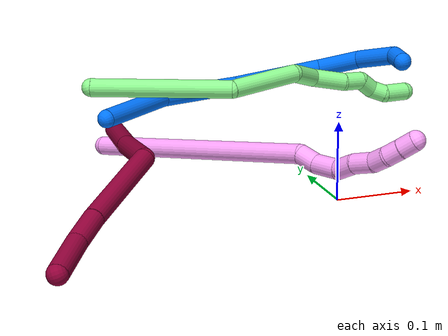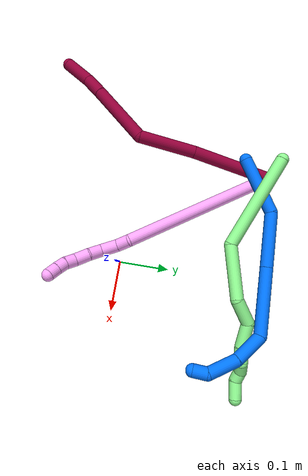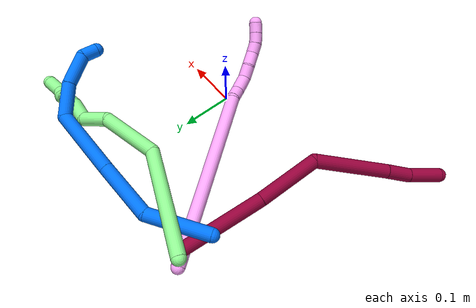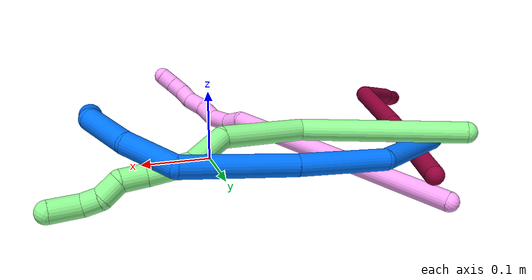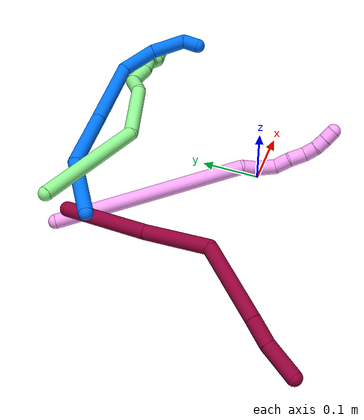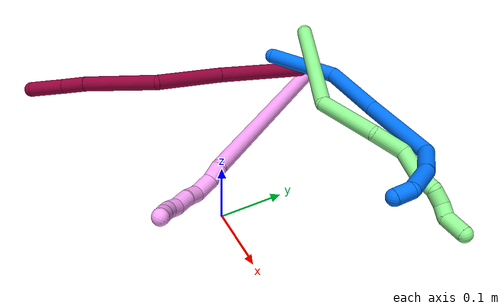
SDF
<sdf version="1.7">
 <world name="default">
  <model name="4">
   <static>0</static>
   <link name="4">
    <collision name="collision-cylinder-e_1_1_4">
     <pose>0.01134 -0.136554 -0.086725 2.13662 0.069984 0.127232</pose>
     <geometry><cylinder><radius>0.0125</radius><length>0.324325</length></cylinder></geometry>
     <surface>
      <friction><ode><mu>1.16</mu><mu2>1.16</mu2><slip1>0</slip1><slip2>0</slip2></ode></friction>
      <contact><ode><kp>1e+06</kp><kd>1</kd><max_vel>0</max_vel><min_depth>0.001</min_depth></ode></contact>
     </surface>
    </collision>
    <visual name="visual-cylinder-e_1_1_4">
     <pose>0.01134 -0.136554 -0.086725 2.13662 0.069984 0.127232</pose>
     <geometry><cylinder><radius>0.0125</radius><length>0.324325</length></cylinder></geometry>
     <material><ambient>1 0.65098 0.996078 1</ambient></material>
    </visual>
    <collision name="collision-cylinder-e_2_4_5">
     <pose>0.023036 -0.279843 -0.184402 2.59026 0.027775 0.09812</pose>
     <geometry><cylinder><radius>0.0125</radius><length>0.025726</length></cylinder></geometry>
     <surface>
      <friction><ode><mu>1.16</mu><mu2>1.16</mu2><slip1>0</slip1><slip2>0</slip2></ode></friction>
      <contact><ode><kp>1e+06</kp><kd>1</kd><max_vel>0</max_vel><min_depth>0.001</min_depth></ode></contact>
     </surface>
    </collision>
    <visual name="visual-cylinder-e_2_4_5">
     <pose>0.023036 -0.279843 -0.184402 2.59026 0.027775 0.09812</pose>
     <geometry><cylinder><radius>0.0125</radius><length>0.025726</length></cylinder></geometry>
     <material><ambient>1 0.65098 0.996078 1</ambient></material>
    </visual>
    <collision name="collision-cylinder-e_3_5_6">
     <pose>0.022459 -0.299547 -0.206385 2.27557 -0.054845 -0.118535</pose>
     <geometry><cylinder><radius>0.0125</radius><length>0.034101</length></cylinder></geometry>
     <surface>
      <friction><ode><mu>1.16</mu><mu2>1.16</mu2><slip1>0</slip1><slip2>0</slip2></ode></friction>
      <contact><ode><kp>1e+06</kp><kd>1</kd><max_vel>0</max_vel><min_depth>0.001</min_depth></ode></contact>
     </surface>
    </collision>
    <visual name="visual-cylinder-e_3_5_6">
     <pose>0.022459 -0.299547 -0.206385 2.27557 -0.054845 -0.118535</pose>
     <geometry><cylinder><radius>0.0125</radius><length>0.034101</length></cylinder></geometry>
     <material><ambient>1 0.65098 0.996078 1</ambient></material>
    </visual>
    <collision name="collision-cylinder-e_4_6_7">
     <pose>0.021216 -0.325307 -0.220492 1.80688 -0.023432 -0.029736</pose>
     <geometry><cylinder><radius>0.0125</radius><length>0.026319</length></cylinder></geometry>
     <surface>
      <friction><ode><mu>1.16</mu><mu2>1.16</mu2><slip1>0</slip1><slip2>0</slip2></ode></friction>
      <contact><ode><kp>1e+06</kp><kd>1</kd><max_vel>0</max_vel><min_depth>0.001</min_depth></ode></contact>
     </surface>
    </collision>
    <visual name="visual-cylinder-e_4_6_7">
     <pose>0.021216 -0.325307 -0.220492 1.80688 -0.023432 -0.029736</pose>
     <geometry><cylinder><radius>0.0125</radius><length>0.026319</length></cylinder></geometry>
     <material><ambient>1 0.65098 0.996078 1</ambient></material>
    </visual>
    <collision name="collision-cylinder-e_5_7_8">
     <pose>0.021452 -0.350644 -0.229722 2.0267 0.038964 0.06249</pose>
     <geometry><cylinder><radius>0.0125</radius><length>0.027969</length></cylinder></geometry>
     <surface>
      <friction><ode><mu>1.16</mu><mu2>1.16</mu2><slip1>0</slip1><slip2>0</slip2></ode></friction>
      <contact><ode><kp>1e+06</kp><kd>1</kd><max_vel>0</max_vel><min_depth>0.001</min_depth></ode></contact>
     </surface>
    </collision>
    <visual name="visual-cylinder-e_5_7_8">
     <pose>0.021452 -0.350644 -0.229722 2.0267 0.038964 0.06249</pose>
     <geometry><cylinder><radius>0.0125</radius><length>0.027969</length></cylinder></geometry>
     <material><ambient>1 0.65098 0.996078 1</ambient></material>
    </visual>
    <collision name="collision-cylinder-e_6_8_9">
     <pose>0.021801 -0.373794 -0.237757 1.74653 -0.018174 -0.021685</pose>
     <geometry><cylinder><radius>0.0125</radius><length>0.021542</length></cylinder></geometry>
     <surface>
      <friction><ode><mu>1.16</mu><mu2>1.16</mu2><slip1>0</slip1><slip2>0</slip2></ode></friction>
      <contact><ode><kp>1e+06</kp><kd>1</kd><max_vel>0</max_vel><min_depth>0.001</min_depth></ode></contact>
     </surface>
    </collision>
    <visual name="visual-cylinder-e_6_8_9">
     <pose>0.021801 -0.373794 -0.237757 1.74653 -0.018174 -0.021685</pose>
     <geometry><cylinder><radius>0.0125</radius><length>0.021542</length></cylinder></geometry>
     <material><ambient>1 0.65098 0.996078 1</ambient></material>
    </visual>
    <collision name="collision-cylinder-e_7_9_10">
     <pose>0.023972 -0.394071 -0.240582 1.66793 0.238844 0.262979</pose>
     <geometry><cylinder><radius>0.0125</radius><length>0.020006</length></cylinder></geometry>
     <surface>
      <friction><ode><mu>1.16</mu><mu2>1.16</mu2><slip1>0</slip1><slip2>0</slip2></ode></friction>
      <contact><ode><kp>1e+06</kp><kd>1</kd><max_vel>0</max_vel><min_depth>0.001</min_depth></ode></contact>
     </surface>
    </collision>
    <visual name="visual-cylinder-e_7_9_10">
     <pose>0.023972 -0.394071 -0.240582 1.66793 0.238844 0.262979</pose>
     <geometry><cylinder><radius>0.0125</radius><length>0.020006</length></cylinder></geometry>
     <material><ambient>1 0.65098 0.996078 1</ambient></material>
    </visual>
    <collision name="collision-cylinder-e_8_10_2">
     <pose>0.029234 -0.413304 -0.24211 1.63195 0.293528 0.311761</pose>
     <geometry><cylinder><radius>0.0125</radius><length>0.020012</length></cylinder></geometry>
     <surface>
      <friction><ode><mu>1.16</mu><mu2>1.16</mu2><slip1>0</slip1><slip2>0</slip2></ode></friction>
      <contact><ode><kp>1e+06</kp><kd>1</kd><max_vel>0</max_vel><min_depth>0.001</min_depth></ode></contact>
     </surface>
    </collision>
    <visual name="visual-cylinder-e_8_10_2">
     <pose>0.029234 -0.413304 -0.24211 1.63195 0.293528 0.311761</pose>
     <geometry><cylinder><radius>0.0125</radius><length>0.020012</length></cylinder></geometry>
     <material><ambient>1 0.65098 0.996078 1</ambient></material>
    </visual>
    <collision name="collision-sphere-2">
     <pose>0.032129 -0.422864 -0.242695 0 -0 0</pose>
     <geometry><sphere><radius>0.0125</radius></sphere></geometry>
     <surface>
      <friction><ode><mu>1.16</mu><mu2>1.16</mu2><slip1>0</slip1><slip2>0</slip2></ode></friction>
      <contact><ode><kp>1e+06</kp><kd>1</kd><max_vel>0</max_vel><min_depth>0.001</min_depth></ode></contact>
     </surface>
    </collision>
    <visual name="visual-sphere-2">
     <pose>0.032129 -0.422864 -0.242695 0 -0 0</pose>
     <geometry><sphere><radius>0.0125</radius></sphere></geometry>
     <material><ambient>1 0.65098 0.996078 1</ambient></material>
    </visual>
    <collision name="collision-sphere-10">
     <pose>0.026339 -0.403744 -0.241524 0 -0 0</pose>
     <geometry><sphere><radius>0.0125</radius></sphere></geometry>
     <surface>
      <friction><ode><mu>1.16</mu><mu2>1.16</mu2><slip1>0</slip1><slip2>0</slip2></ode></friction>
      <contact><ode><kp>1e+06</kp><kd>1</kd><max_vel>0</max_vel><min_depth>0.001</min_depth></ode></contact>
     </surface>
    </collision>
    <visual name="visual-sphere-10">
     <pose>0.026339 -0.403744 -0.241524 0 -0 0</pose>
     <geometry><sphere><radius>0.0125</radius></sphere></geometry>
     <material><ambient>1 0.65098 0.996078 1</ambient></material>
    </visual>
    <collision name="collision-sphere-9">
     <pose>0.021606 -0.384398 -0.239639 0 -0 0</pose>
     <geometry><sphere><radius>0.0125</radius></sphere></geometry>
     <surface>
      <friction><ode><mu>1.16</mu><mu2>1.16</mu2><slip1>0</slip1><slip2>0</slip2></ode></friction>
      <contact><ode><kp>1e+06</kp><kd>1</kd><max_vel>0</max_vel><min_depth>0.001</min_depth></ode></contact>
     </surface>
    </collision>
    <visual name="visual-sphere-9">
     <pose>0.021606 -0.384398 -0.239639 0 -0 0</pose>
     <geometry><sphere><radius>0.0125</radius></sphere></geometry>
     <material><ambient>1 0.65098 0.996078 1</ambient></material>
    </visual>
    <collision name="collision-sphere-4">
     <pose>0.022679 -0.273107 -0.173449 0 -0 0</pose>
     <geometry><sphere><radius>0.0125</radius></sphere></geometry>
     <surface>
      <friction><ode><mu>1.16</mu><mu2>1.16</mu2><slip1>0</slip1><slip2>0</slip2></ode></friction>
      <contact><ode><kp>1e+06</kp><kd>1</kd><max_vel>0</max_vel><min_depth>0.001</min_depth></ode></contact>
     </surface>
    </collision>
    <visual name="visual-sphere-4">
     <pose>0.022679 -0.273107 -0.173449 0 -0 0</pose>
     <geometry><sphere><radius>0.0125</radius></sphere></geometry>
     <material><ambient>1 0.65098 0.996078 1</ambient></material>
    </visual>
    <collision name="collision-sphere-1">
     <geometry><sphere><radius>0.0125</radius></sphere></geometry>
     <surface>
      <friction><ode><mu>1.16</mu><mu2>1.16</mu2><slip1>0</slip1><slip2>0</slip2></ode></friction>
      <contact><ode><kp>1e+06</kp><kd>1</kd><max_vel>0</max_vel><min_depth>0.001</min_depth></ode></contact>
     </surface>
    </collision>
    <visual name="visual-sphere-1">
     <geometry><sphere><radius>0.0125</radius></sphere></geometry>
     <material><ambient>1 0.65098 0.996078 1</ambient></material>
    </visual>
    <collision name="collision-sphere-8">
     <pose>0.021997 -0.363191 -0.235874 0 -0 0</pose>
     <geometry><sphere><radius>0.0125</radius></sphere></geometry>
     <surface>
      <friction><ode><mu>1.16</mu><mu2>1.16</mu2><slip1>0</slip1><slip2>0</slip2></ode></friction>
      <contact><ode><kp>1e+06</kp><kd>1</kd><max_vel>0</max_vel><min_depth>0.001</min_depth></ode></contact>
     </surface>
    </collision>
    <visual name="visual-sphere-8">
     <pose>0.021997 -0.363191 -0.235874 0 -0 0</pose>
     <geometry><sphere><radius>0.0125</radius></sphere></geometry>
     <material><ambient>1 0.65098 0.996078 1</ambient></material>
    </visual>
    <collision name="collision-sphere-5">
     <pose>0.023394 -0.286578 -0.195355 0 -0 0</pose>
     <geometry><sphere><radius>0.0125</radius></sphere></geometry>
     <surface>
      <friction><ode><mu>1.16</mu><mu2>1.16</mu2><slip1>0</slip1><slip2>0</slip2></ode></friction>
      <contact><ode><kp>1e+06</kp><kd>1</kd><max_vel>0</max_vel><min_depth>0.001</min_depth></ode></contact>
     </surface>
    </collision>
    <visual name="visual-sphere-5">
     <pose>0.023394 -0.286578 -0.195355 0 -0 0</pose>
     <geometry><sphere><radius>0.0125</radius></sphere></geometry>
     <material><ambient>1 0.65098 0.996078 1</ambient></material>
    </visual>
    <collision name="collision-sphere-6">
     <pose>0.021524 -0.312516 -0.217415 0 -0 0</pose>
     <geometry><sphere><radius>0.0125</radius></sphere></geometry>
     <surface>
      <friction><ode><mu>1.16</mu><mu2>1.16</mu2><slip1>0</slip1><slip2>0</slip2></ode></friction>
      <contact><ode><kp>1e+06</kp><kd>1</kd><max_vel>0</max_vel><min_depth>0.001</min_depth></ode></contact>
     </surface>
    </collision>
    <visual name="visual-sphere-6">
     <pose>0.021524 -0.312516 -0.217415 0 -0 0</pose>
     <geometry><sphere><radius>0.0125</radius></sphere></geometry>
     <material><ambient>1 0.65098 0.996078 1</ambient></material>
    </visual>
    <collision name="collision-sphere-7">
     <pose>0.020908 -0.338097 -0.223569 0 -0 0</pose>
     <geometry><sphere><radius>0.0125</radius></sphere></geometry>
     <surface>
      <friction><ode><mu>1.16</mu><mu2>1.16</mu2><slip1>0</slip1><slip2>0</slip2></ode></friction>
      <contact><ode><kp>1e+06</kp><kd>1</kd><max_vel>0</max_vel><min_depth>0.001</min_depth></ode></contact>
     </surface>
    </collision>
    <visual name="visual-sphere-7">
     <pose>0.020908 -0.338097 -0.223569 0 -0 0</pose>
     <geometry><sphere><radius>0.0125</radius></sphere></geometry>
     <material><ambient>1 0.65098 0.996078 1</ambient></material>
    </visual>
    <inertial>
     <pose>0.015458 -0.208556 -0.133834 0 -0 0</pose>
     <mass>0.5</mass>
     <inertia>
      <ixx>0.003207</ixx>
      <ixy>0</ixy>
      <ixz>0</ixz>
      <iyy>-0.001175</iyy>
      <iyz>0</iyz>
      <izz>0.0022</izz>
     </inertia>
    </inertial>
   </link>
   <pose>-0.226252 0.280098 0.012002 -0.716129 0.048863 0.530423</pose>
  </model>
  <model name="8">
   <static>0</static>
   <link name="8">
    <collision name="collision-cylinder-e_1_1_4">
     <pose>-0.007841 -0.074147 0.011846 1.41237 -0.104051 -0.088769</pose>
     <geometry><cylinder><radius>0.0125</radius><length>0.150992</length></cylinder></geometry>
     <surface>
      <friction><ode><mu>1.16</mu><mu2>1.16</mu2><slip1>0</slip1><slip2>0</slip2></ode></friction>
      <contact><ode><kp>1e+06</kp><kd>1</kd><max_vel>0</max_vel><min_depth>0.001</min_depth></ode></contact>
     </surface>
    </collision>
    <visual name="visual-cylinder-e_1_1_4">
     <pose>-0.007841 -0.074147 0.011846 1.41237 -0.104051 -0.088769</pose>
     <geometry><cylinder><radius>0.0125</radius><length>0.150992</length></cylinder></geometry>
     <material><ambient>0.584314 0 0.227451 1</ambient></material>
    </visual>
    <collision name="collision-cylinder-e_2_4_5">
     <pose>-0.020332 -0.202794 0.036059 1.34764 -0.083 -0.066289</pose>
     <geometry><cylinder><radius>0.0125</radius><length>0.112156</length></cylinder></geometry>
     <surface>
      <friction><ode><mu>1.16</mu><mu2>1.16</mu2><slip1>0</slip1><slip2>0</slip2></ode></friction>
      <contact><ode><kp>1e+06</kp><kd>1</kd><max_vel>0</max_vel><min_depth>0.001</min_depth></ode></contact>
     </surface>
    </collision>
    <visual name="visual-cylinder-e_2_4_5">
     <pose>-0.020332 -0.202794 0.036059 1.34764 -0.083 -0.066289</pose>
     <geometry><cylinder><radius>0.0125</radius><length>0.112156</length></cylinder></geometry>
     <material><ambient>0.584314 0 0.227451 1</ambient></material>
    </visual>
    <collision name="collision-cylinder-e_3_5_6">
     <pose>-0.020764 -0.31523 0.016424 2.07546 0.063617 0.107749</pose>
     <geometry><cylinder><radius>0.0125</radius><length>0.132645</length></cylinder></geometry>
     <surface>
      <friction><ode><mu>1.16</mu><mu2>1.16</mu2><slip1>0</slip1><slip2>0</slip2></ode></friction>
      <contact><ode><kp>1e+06</kp><kd>1</kd><max_vel>0</max_vel><min_depth>0.001</min_depth></ode></contact>
     </surface>
    </collision>
    <visual name="visual-cylinder-e_3_5_6">
     <pose>-0.020764 -0.31523 0.016424 2.07546 0.063617 0.107749</pose>
     <geometry><cylinder><radius>0.0125</radius><length>0.132645</length></cylinder></geometry>
     <material><ambient>0.584314 0 0.227451 1</ambient></material>
    </visual>
    <collision name="collision-cylinder-e_4_6_7">
     <pose>-0.01339 -0.391912 -0.026226 2.08735 0.145458 0.249048</pose>
     <geometry><cylinder><radius>0.0125</radius><length>0.043575</length></cylinder></geometry>
     <surface>
      <friction><ode><mu>1.16</mu><mu2>1.16</mu2><slip1>0</slip1><slip2>0</slip2></ode></friction>
      <contact><ode><kp>1e+06</kp><kd>1</kd><max_vel>0</max_vel><min_depth>0.001</min_depth></ode></contact>
     </surface>
    </collision>
    <visual name="visual-cylinder-e_4_6_7">
     <pose>-0.01339 -0.391912 -0.026226 2.08735 0.145458 0.249048</pose>
     <geometry><cylinder><radius>0.0125</radius><length>0.043575</length></cylinder></geometry>
     <material><ambient>0.584314 0 0.227451 1</ambient></material>
    </visual>
    <collision name="collision-cylinder-e_5_7_2">
     <pose>-0.007543 -0.438885 -0.047597 1.93386 0.088832 0.128682</pose>
     <geometry><cylinder><radius>0.0125</radius><length>0.060632</length></cylinder></geometry>
     <surface>
      <friction><ode><mu>1.16</mu><mu2>1.16</mu2><slip1>0</slip1><slip2>0</slip2></ode></friction>
      <contact><ode><kp>1e+06</kp><kd>1</kd><max_vel>0</max_vel><min_depth>0.001</min_depth></ode></contact>
     </surface>
    </collision>
    <visual name="visual-cylinder-e_5_7_2">
     <pose>-0.007543 -0.438885 -0.047597 1.93386 0.088832 0.128682</pose>
     <geometry><cylinder><radius>0.0125</radius><length>0.060632</length></cylinder></geometry>
     <material><ambient>0.584314 0 0.227451 1</ambient></material>
    </visual>
    <collision name="collision-sphere-2">
     <pose>-0.004853 -0.467113 -0.058321 0 -0 0</pose>
     <geometry><sphere><radius>0.0125</radius></sphere></geometry>
     <surface>
      <friction><ode><mu>1.16</mu><mu2>1.16</mu2><slip1>0</slip1><slip2>0</slip2></ode></friction>
      <contact><ode><kp>1e+06</kp><kd>1</kd><max_vel>0</max_vel><min_depth>0.001</min_depth></ode></contact>
     </surface>
    </collision>
    <visual name="visual-sphere-2">
     <pose>-0.004853 -0.467113 -0.058321 0 -0 0</pose>
     <geometry><sphere><radius>0.0125</radius></sphere></geometry>
     <material><ambient>0.584314 0 0.227451 1</ambient></material>
    </visual>
    <collision name="collision-sphere-7">
     <pose>-0.010232 -0.410656 -0.036873 0 -0 0</pose>
     <geometry><sphere><radius>0.0125</radius></sphere></geometry>
     <surface>
      <friction><ode><mu>1.16</mu><mu2>1.16</mu2><slip1>0</slip1><slip2>0</slip2></ode></friction>
      <contact><ode><kp>1e+06</kp><kd>1</kd><max_vel>0</max_vel><min_depth>0.001</min_depth></ode></contact>
     </surface>
    </collision>
    <visual name="visual-sphere-7">
     <pose>-0.010232 -0.410656 -0.036873 0 -0 0</pose>
     <geometry><sphere><radius>0.0125</radius></sphere></geometry>
     <material><ambient>0.584314 0 0.227451 1</ambient></material>
    </visual>
    <collision name="collision-sphere-6">
     <pose>-0.016548 -0.373167 -0.015579 0 -0 0</pose>
     <geometry><sphere><radius>0.0125</radius></sphere></geometry>
     <surface>
      <friction><ode><mu>1.16</mu><mu2>1.16</mu2><slip1>0</slip1><slip2>0</slip2></ode></friction>
      <contact><ode><kp>1e+06</kp><kd>1</kd><max_vel>0</max_vel><min_depth>0.001</min_depth></ode></contact>
     </surface>
    </collision>
    <visual name="visual-sphere-6">
     <pose>-0.016548 -0.373167 -0.015579 0 -0 0</pose>
     <geometry><sphere><radius>0.0125</radius></sphere></geometry>
     <material><ambient>0.584314 0 0.227451 1</ambient></material>
    </visual>
    <collision name="collision-sphere-5">
     <pose>-0.024981 -0.257293 0.048427 0 -0 0</pose>
     <geometry><sphere><radius>0.0125</radius></sphere></geometry>
     <surface>
      <friction><ode><mu>1.16</mu><mu2>1.16</mu2><slip1>0</slip1><slip2>0</slip2></ode></friction>
      <contact><ode><kp>1e+06</kp><kd>1</kd><max_vel>0</max_vel><min_depth>0.001</min_depth></ode></contact>
     </surface>
    </collision>
    <visual name="visual-sphere-5">
     <pose>-0.024981 -0.257293 0.048427 0 -0 0</pose>
     <geometry><sphere><radius>0.0125</radius></sphere></geometry>
     <material><ambient>0.584314 0 0.227451 1</ambient></material>
    </visual>
    <collision name="collision-sphere-1">
     <geometry><sphere><radius>0.0125</radius></sphere></geometry>
     <surface>
      <friction><ode><mu>1.16</mu><mu2>1.16</mu2><slip1>0</slip1><slip2>0</slip2></ode></friction>
      <contact><ode><kp>1e+06</kp><kd>1</kd><max_vel>0</max_vel><min_depth>0.001</min_depth></ode></contact>
     </surface>
    </collision>
    <visual name="visual-sphere-1">
     <geometry><sphere><radius>0.0125</radius></sphere></geometry>
     <material><ambient>0.584314 0 0.227451 1</ambient></material>
    </visual>
    <collision name="collision-sphere-4">
     <pose>-0.015682 -0.148295 0.023692 0 -0 0</pose>
     <geometry><sphere><radius>0.0125</radius></sphere></geometry>
     <surface>
      <friction><ode><mu>1.16</mu><mu2>1.16</mu2><slip1>0</slip1><slip2>0</slip2></ode></friction>
      <contact><ode><kp>1e+06</kp><kd>1</kd><max_vel>0</max_vel><min_depth>0.001</min_depth></ode></contact>
     </surface>
    </collision>
    <visual name="visual-sphere-4">
     <pose>-0.015682 -0.148295 0.023692 0 -0 0</pose>
     <geometry><sphere><radius>0.0125</radius></sphere></geometry>
     <material><ambient>0.584314 0 0.227451 1</ambient></material>
    </visual>
    <inertial>
     <pose>-0.014519 -0.238884 0.007965 0 -0 0</pose>
     <mass>0.5</mass>
     <inertia>
      <ixx>0.00063</ixx>
      <ixy>0</ixy>
      <ixz>0</ixz>
      <iyy>-7.4e-05</iyy>
      <iyz>0</iyz>
      <izz>0.000628</izz>
     </inertia>
    </inertial>
   </link>
   <pose>-0.216084 0.260429 0.039541 -0.007895 1.22192 -0.26228</pose>
  </model>
  <model name="13">
   <static>0</static>
   <link name="13">
    <collision name="collision-cylinder-e_1_1_4">
     <pose>0.036697 0.076399 0.044211 -1.0462 0.393998 -0.229191</pose>
     <geometry><cylinder><radius>0.0125</radius><length>0.191187</length></cylinder></geometry>
     <surface>
      <friction><ode><mu>1.16</mu><mu2>1.16</mu2><slip1>0</slip1><slip2>0</slip2></ode></friction>
      <contact><ode><kp>1e+06</kp><kd>1</kd><max_vel>0</max_vel><min_depth>0.001</min_depth></ode></contact>
     </surface>
    </collision>
    <visual name="visual-cylinder-e_1_1_4">
     <pose>0.036697 0.076399 0.044211 -1.0462 0.393998 -0.229191</pose>
     <geometry><cylinder><radius>0.0125</radius><length>0.191187</length></cylinder></geometry>
     <material><ambient>0.564706 0.984314 0.572549 1</ambient></material>
    </visual>
    <collision name="collision-cylinder-e_2_4_5">
     <pose>0.115742 0.170163 0.11188 -0.637202 0.967361 -0.343119</pose>
     <geometry><cylinder><radius>0.0125</radius><length>0.102863</length></cylinder></geometry>
     <surface>
      <friction><ode><mu>1.16</mu><mu2>1.16</mu2><slip1>0</slip1><slip2>0</slip2></ode></friction>
      <contact><ode><kp>1e+06</kp><kd>1</kd><max_vel>0</max_vel><min_depth>0.001</min_depth></ode></contact>
     </surface>
    </collision>
    <visual name="visual-cylinder-e_2_4_5">
     <pose>0.115742 0.170163 0.11188 -0.637202 0.967361 -0.343119</pose>
     <geometry><cylinder><radius>0.0125</radius><length>0.102863</length></cylinder></geometry>
     <material><ambient>0.564706 0.984314 0.572549 1</ambient></material>
    </visual>
    <collision name="collision-cylinder-e_3_5_6">
     <pose>0.175972 0.184435 0.153194 0.171474 0.778773 0.070506</pose>
     <geometry><cylinder><radius>0.0125</radius><length>0.050918</length></cylinder></geometry>
     <surface>
      <friction><ode><mu>1.16</mu><mu2>1.16</mu2><slip1>0</slip1><slip2>0</slip2></ode></friction>
      <contact><ode><kp>1e+06</kp><kd>1</kd><max_vel>0</max_vel><min_depth>0.001</min_depth></ode></contact>
     </surface>
    </collision>
    <visual name="visual-cylinder-e_3_5_6">
     <pose>0.175972 0.184435 0.153194 0.171474 0.778773 0.070506</pose>
     <geometry><cylinder><radius>0.0125</radius><length>0.050918</length></cylinder></geometry>
     <material><ambient>0.564706 0.984314 0.572549 1</ambient></material>
    </visual>
    <collision name="collision-cylinder-e_4_6_7">
     <pose>0.205841 0.194309 0.186924 -0.684875 0.529147 -0.192562</pose>
     <geometry><cylinder><radius>0.0125</radius><length>0.047489</length></cylinder></geometry>
     <surface>
      <friction><ode><mu>1.16</mu><mu2>1.16</mu2><slip1>0</slip1><slip2>0</slip2></ode></friction>
      <contact><ode><kp>1e+06</kp><kd>1</kd><max_vel>0</max_vel><min_depth>0.001</min_depth></ode></contact>
     </surface>
    </collision>
    <visual name="visual-cylinder-e_4_6_7">
     <pose>0.205841 0.194309 0.186924 -0.684875 0.529147 -0.192562</pose>
     <geometry><cylinder><radius>0.0125</radius><length>0.047489</length></cylinder></geometry>
     <material><ambient>0.564706 0.984314 0.572549 1</ambient></material>
    </visual>
    <collision name="collision-cylinder-e_5_7_8">
     <pose>0.228137 0.212682 0.210893 -0.588925 0.814153 -0.260048</pose>
     <geometry><cylinder><radius>0.0125</radius><length>0.028359</length></cylinder></geometry>
     <surface>
      <friction><ode><mu>1.16</mu><mu2>1.16</mu2><slip1>0</slip1><slip2>0</slip2></ode></friction>
      <contact><ode><kp>1e+06</kp><kd>1</kd><max_vel>0</max_vel><min_depth>0.001</min_depth></ode></contact>
     </surface>
    </collision>
    <visual name="visual-cylinder-e_5_7_8">
     <pose>0.228137 0.212682 0.210893 -0.588925 0.814153 -0.260048</pose>
     <geometry><cylinder><radius>0.0125</radius><length>0.028359</length></cylinder></geometry>
     <material><ambient>0.564706 0.984314 0.572549 1</ambient></material>
    </visual>
    <collision name="collision-cylinder-e_6_8_9">
     <pose>0.242182 0.219693 0.230252 -0.141452 0.317105 -0.022654</pose>
     <geometry><cylinder><radius>0.0125</radius><length>0.023951</length></cylinder></geometry>
     <surface>
      <friction><ode><mu>1.16</mu><mu2>1.16</mu2><slip1>0</slip1><slip2>0</slip2></ode></friction>
      <contact><ode><kp>1e+06</kp><kd>1</kd><max_vel>0</max_vel><min_depth>0.001</min_depth></ode></contact>
     </surface>
    </collision>
    <visual name="visual-cylinder-e_6_8_9">
     <pose>0.242182 0.219693 0.230252 -0.141452 0.317105 -0.022654</pose>
     <geometry><cylinder><radius>0.0125</radius><length>0.023951</length></cylinder></geometry>
     <material><ambient>0.564706 0.984314 0.572549 1</ambient></material>
    </visual>
    <collision name="collision-cylinder-e_7_9_10">
     <pose>0.248851 0.227482 0.249227 -0.676032 0.288661 -0.102088</pose>
     <geometry><cylinder><radius>0.0125</radius><length>0.020624</length></cylinder></geometry>
     <surface>
      <friction><ode><mu>1.16</mu><mu2>1.16</mu2><slip1>0</slip1><slip2>0</slip2></ode></friction>
      <contact><ode><kp>1e+06</kp><kd>1</kd><max_vel>0</max_vel><min_depth>0.001</min_depth></ode></contact>
     </surface>
    </collision>
    <visual name="visual-cylinder-e_7_9_10">
     <pose>0.248851 0.227482 0.249227 -0.676032 0.288661 -0.102088</pose>
     <geometry><cylinder><radius>0.0125</radius><length>0.020624</length></cylinder></geometry>
     <material><ambient>0.564706 0.984314 0.572549 1</ambient></material>
    </visual>
    <collision name="collision-cylinder-e_8_10_2">
     <pose>0.264425 0.240787 0.266376 -0.646259 0.818783 -0.288583</pose>
     <geometry><cylinder><radius>0.0125</radius><length>0.034611</length></cylinder></geometry>
     <surface>
      <friction><ode><mu>1.16</mu><mu2>1.16</mu2><slip1>0</slip1><slip2>0</slip2></ode></friction>
      <contact><ode><kp>1e+06</kp><kd>1</kd><max_vel>0</max_vel><min_depth>0.001</min_depth></ode></contact>
     </surface>
    </collision>
    <visual name="visual-cylinder-e_8_10_2">
     <pose>0.264425 0.240787 0.266376 -0.646259 0.818783 -0.288583</pose>
     <geometry><cylinder><radius>0.0125</radius><length>0.034611</length></cylinder></geometry>
     <material><ambient>0.564706 0.984314 0.572549 1</ambient></material>
    </visual>
    <collision name="collision-sphere-2">
     <pose>0.277064 0.247905 0.275814 0 -0 0</pose>
     <geometry><sphere><radius>0.0125</radius></sphere></geometry>
     <surface>
      <friction><ode><mu>1.16</mu><mu2>1.16</mu2><slip1>0</slip1><slip2>0</slip2></ode></friction>
      <contact><ode><kp>1e+06</kp><kd>1</kd><max_vel>0</max_vel><min_depth>0.001</min_depth></ode></contact>
     </surface>
    </collision>
    <visual name="visual-sphere-2">
     <pose>0.277064 0.247905 0.275814 0 -0 0</pose>
     <geometry><sphere><radius>0.0125</radius></sphere></geometry>
     <material><ambient>0.564706 0.984314 0.572549 1</ambient></material>
    </visual>
    <collision name="collision-sphere-10">
     <pose>0.251787 0.233668 0.256939 0 -0 0</pose>
     <geometry><sphere><radius>0.0125</radius></sphere></geometry>
     <surface>
      <friction><ode><mu>1.16</mu><mu2>1.16</mu2><slip1>0</slip1><slip2>0</slip2></ode></friction>
      <contact><ode><kp>1e+06</kp><kd>1</kd><max_vel>0</max_vel><min_depth>0.001</min_depth></ode></contact>
     </surface>
    </collision>
    <visual name="visual-sphere-10">
     <pose>0.251787 0.233668 0.256939 0 -0 0</pose>
     <geometry><sphere><radius>0.0125</radius></sphere></geometry>
     <material><ambient>0.564706 0.984314 0.572549 1</ambient></material>
    </visual>
    <collision name="collision-sphere-9">
     <pose>0.245916 0.221297 0.241516 0 -0 0</pose>
     <geometry><sphere><radius>0.0125</radius></sphere></geometry>
     <surface>
      <friction><ode><mu>1.16</mu><mu2>1.16</mu2><slip1>0</slip1><slip2>0</slip2></ode></friction>
      <contact><ode><kp>1e+06</kp><kd>1</kd><max_vel>0</max_vel><min_depth>0.001</min_depth></ode></contact>
     </surface>
    </collision>
    <visual name="visual-sphere-9">
     <pose>0.245916 0.221297 0.241516 0 -0 0</pose>
     <geometry><sphere><radius>0.0125</radius></sphere></geometry>
     <material><ambient>0.564706 0.984314 0.572549 1</ambient></material>
    </visual>
    <collision name="collision-sphere-4">
     <pose>0.073393 0.152799 0.088421 0 -0 0</pose>
     <geometry><sphere><radius>0.0125</radius></sphere></geometry>
     <surface>
      <friction><ode><mu>1.16</mu><mu2>1.16</mu2><slip1>0</slip1><slip2>0</slip2></ode></friction>
      <contact><ode><kp>1e+06</kp><kd>1</kd><max_vel>0</max_vel><min_depth>0.001</min_depth></ode></contact>
     </surface>
    </collision>
    <visual name="visual-sphere-4">
     <pose>0.073393 0.152799 0.088421 0 -0 0</pose>
     <geometry><sphere><radius>0.0125</radius></sphere></geometry>
     <material><ambient>0.564706 0.984314 0.572549 1</ambient></material>
    </visual>
    <collision name="collision-sphere-1">
     <geometry><sphere><radius>0.0125</radius></sphere></geometry>
     <surface>
      <friction><ode><mu>1.16</mu><mu2>1.16</mu2><slip1>0</slip1><slip2>0</slip2></ode></friction>
      <contact><ode><kp>1e+06</kp><kd>1</kd><max_vel>0</max_vel><min_depth>0.001</min_depth></ode></contact>
     </surface>
    </collision>
    <visual name="visual-sphere-1">
     <geometry><sphere><radius>0.0125</radius></sphere></geometry>
     <material><ambient>0.564706 0.984314 0.572549 1</ambient></material>
    </visual>
    <collision name="collision-sphere-8">
     <pose>0.238448 0.218089 0.218987 0 -0 0</pose>
     <geometry><sphere><radius>0.0125</radius></sphere></geometry>
     <surface>
      <friction><ode><mu>1.16</mu><mu2>1.16</mu2><slip1>0</slip1><slip2>0</slip2></ode></friction>
      <contact><ode><kp>1e+06</kp><kd>1</kd><max_vel>0</max_vel><min_depth>0.001</min_depth></ode></contact>
     </surface>
    </collision>
    <visual name="visual-sphere-8">
     <pose>0.238448 0.218089 0.218987 0 -0 0</pose>
     <geometry><sphere><radius>0.0125</radius></sphere></geometry>
     <material><ambient>0.564706 0.984314 0.572549 1</ambient></material>
    </visual>
    <collision name="collision-sphere-5">
     <pose>0.15809 0.187527 0.135338 0 -0 0</pose>
     <geometry><sphere><radius>0.0125</radius></sphere></geometry>
     <surface>
      <friction><ode><mu>1.16</mu><mu2>1.16</mu2><slip1>0</slip1><slip2>0</slip2></ode></friction>
      <contact><ode><kp>1e+06</kp><kd>1</kd><max_vel>0</max_vel><min_depth>0.001</min_depth></ode></contact>
     </surface>
    </collision>
    <visual name="visual-sphere-5">
     <pose>0.15809 0.187527 0.135338 0 -0 0</pose>
     <geometry><sphere><radius>0.0125</radius></sphere></geometry>
     <material><ambient>0.564706 0.984314 0.572549 1</ambient></material>
    </visual>
    <collision name="collision-sphere-6">
     <pose>0.193855 0.181343 0.171049 0 -0 0</pose>
     <geometry><sphere><radius>0.0125</radius></sphere></geometry>
     <surface>
      <friction><ode><mu>1.16</mu><mu2>1.16</mu2><slip1>0</slip1><slip2>0</slip2></ode></friction>
      <contact><ode><kp>1e+06</kp><kd>1</kd><max_vel>0</max_vel><min_depth>0.001</min_depth></ode></contact>
     </surface>
    </collision>
    <visual name="visual-sphere-6">
     <pose>0.193855 0.181343 0.171049 0 -0 0</pose>
     <geometry><sphere><radius>0.0125</radius></sphere></geometry>
     <material><ambient>0.564706 0.984314 0.572549 1</ambient></material>
    </visual>
    <collision name="collision-sphere-7">
     <pose>0.217827 0.207275 0.202799 0 -0 0</pose>
     <geometry><sphere><radius>0.0125</radius></sphere></geometry>
     <surface>
      <friction><ode><mu>1.16</mu><mu2>1.16</mu2><slip1>0</slip1><slip2>0</slip2></ode></friction>
      <contact><ode><kp>1e+06</kp><kd>1</kd><max_vel>0</max_vel><min_depth>0.001</min_depth></ode></contact>
     </surface>
    </collision>
    <visual name="visual-sphere-7">
     <pose>0.217827 0.207275 0.202799 0 -0 0</pose>
     <geometry><sphere><radius>0.0125</radius></sphere></geometry>
     <material><ambient>0.564706 0.984314 0.572549 1</ambient></material>
    </visual>
    <inertial>
     <pose>0.128422 0.150094 0.124985 0 -0 0</pose>
     <mass>0.5</mass>
     <inertia>
      <ixx>0.000485</ixx>
      <ixy>0</ixy>
      <ixz>0</ixz>
      <iyy>0.000326</iyy>
      <iyz>0</iyz>
      <izz>-0.000816</izz>
     </inertia>
    </inertial>
   </link>
   <pose>-0.242332 0.280197 0.095343 2.82539 -0.456558 0.743246</pose>
  </model>
  <model name="14">
   <static>0</static>
   <link name="14">
    <collision name="collision-cylinder-e_1_1_4">
     <pose>0.002145 0.003628 0.057308 -0.063231 0.037329 -0.001181</pose>
     <geometry><cylinder><radius>0.0125</radius><length>0.114926</length></cylinder></geometry>
     <surface>
      <friction><ode><mu>1.16</mu><mu2>1.16</mu2><slip1>0</slip1><slip2>0</slip2></ode></friction>
      <contact><ode><kp>1e+06</kp><kd>1</kd><max_vel>0</max_vel><min_depth>0.001</min_depth></ode></contact>
     </surface>
    </collision>
    <visual name="visual-cylinder-e_1_1_4">
     <pose>0.002145 0.003628 0.057308 -0.063231 0.037329 -0.001181</pose>
     <geometry><cylinder><radius>0.0125</radius><length>0.114926</length></cylinder></geometry>
     <material><ambient>0 0.462745 1 1</ambient></material>
    </visual>
    <collision name="collision-cylinder-e_2_4_5">
     <pose>0.029632 -0.003636 0.160308 0.234026 0.494767 0.059359</pose>
     <geometry><cylinder><radius>0.0125</radius><length>0.106745</length></cylinder></geometry>
     <surface>
      <friction><ode><mu>1.16</mu><mu2>1.16</mu2><slip1>0</slip1><slip2>0</slip2></ode></friction>
      <contact><ode><kp>1e+06</kp><kd>1</kd><max_vel>0</max_vel><min_depth>0.001</min_depth></ode></contact>
     </surface>
    </collision>
    <visual name="visual-cylinder-e_2_4_5">
     <pose>0.029632 -0.003636 0.160308 0.234026 0.494767 0.059359</pose>
     <geometry><cylinder><radius>0.0125</radius><length>0.106745</length></cylinder></geometry>
     <material><ambient>0 0.462745 1 1</ambient></material>
    </visual>
    <collision name="collision-cylinder-e_3_5_6">
     <pose>0.084813 -0.030376 0.260773 0.281653 0.482122 0.069675</pose>
     <geometry><cylinder><radius>0.0125</radius><length>0.128711</length></cylinder></geometry>
     <surface>
      <friction><ode><mu>1.16</mu><mu2>1.16</mu2><slip1>0</slip1><slip2>0</slip2></ode></friction>
      <contact><ode><kp>1e+06</kp><kd>1</kd><max_vel>0</max_vel><min_depth>0.001</min_depth></ode></contact>
     </surface>
    </collision>
    <visual name="visual-cylinder-e_3_5_6">
     <pose>0.084813 -0.030376 0.260773 0.281653 0.482122 0.069675</pose>
     <geometry><cylinder><radius>0.0125</radius><length>0.128711</length></cylinder></geometry>
     <material><ambient>0 0.462745 1 1</ambient></material>
    </visual>
    <collision name="collision-cylinder-e_4_6_7">
     <pose>0.136582 -0.066357 0.324519 1.15149 0.782861 0.523513</pose>
     <geometry><cylinder><radius>0.0125</radius><length>0.062185</length></cylinder></geometry>
     <surface>
      <friction><ode><mu>1.16</mu><mu2>1.16</mu2><slip1>0</slip1><slip2>0</slip2></ode></friction>
      <contact><ode><kp>1e+06</kp><kd>1</kd><max_vel>0</max_vel><min_depth>0.001</min_depth></ode></contact>
     </surface>
    </collision>
    <visual name="visual-cylinder-e_4_6_7">
     <pose>0.136582 -0.066357 0.324519 1.15149 0.782861 0.523513</pose>
     <geometry><cylinder><radius>0.0125</radius><length>0.062185</length></cylinder></geometry>
     <material><ambient>0 0.462745 1 1</ambient></material>
    </visual>
    <collision name="collision-cylinder-e_5_7_8">
     <pose>0.181077 -0.105973 0.333029 1.59462 0.85839 0.876565</pose>
     <geometry><cylinder><radius>0.0125</radius><length>0.059633</length></cylinder></geometry>
     <surface>
      <friction><ode><mu>1.16</mu><mu2>1.16</mu2><slip1>0</slip1><slip2>0</slip2></ode></friction>
      <contact><ode><kp>1e+06</kp><kd>1</kd><max_vel>0</max_vel><min_depth>0.001</min_depth></ode></contact>
     </surface>
    </collision>
    <visual name="visual-cylinder-e_5_7_8">
     <pose>0.181077 -0.105973 0.333029 1.59462 0.85839 0.876565</pose>
     <geometry><cylinder><radius>0.0125</radius><length>0.059633</length></cylinder></geometry>
     <material><ambient>0 0.462745 1 1</ambient></material>
    </visual>
    <collision name="collision-cylinder-e_6_8_2">
     <pose>0.213799 -0.130217 0.324355 2.61614 0.819416 2.03265</pose>
     <geometry><cylinder><radius>0.0125</radius><length>0.0278</length></cylinder></geometry>
     <surface>
      <friction><ode><mu>1.16</mu><mu2>1.16</mu2><slip1>0</slip1><slip2>0</slip2></ode></friction>
      <contact><ode><kp>1e+06</kp><kd>1</kd><max_vel>0</max_vel><min_depth>0.001</min_depth></ode></contact>
     </surface>
    </collision>
    <visual name="visual-cylinder-e_6_8_2">
     <pose>0.213799 -0.130217 0.324355 2.61614 0.819416 2.03265</pose>
     <geometry><cylinder><radius>0.0125</radius><length>0.0278</length></cylinder></geometry>
     <material><ambient>0 0.462745 1 1</ambient></material>
    </visual>
    <collision name="collision-sphere-2">
     <pose>0.223957 -0.134976 0.316147 0 -0 0</pose>
     <geometry><sphere><radius>0.0125</radius></sphere></geometry>
     <surface>
      <friction><ode><mu>1.16</mu><mu2>1.16</mu2><slip1>0</slip1><slip2>0</slip2></ode></friction>
      <contact><ode><kp>1e+06</kp><kd>1</kd><max_vel>0</max_vel><min_depth>0.001</min_depth></ode></contact>
     </surface>
    </collision>
    <visual name="visual-sphere-2">
     <pose>0.223957 -0.134976 0.316147 0 -0 0</pose>
     <geometry><sphere><radius>0.0125</radius></sphere></geometry>
     <material><ambient>0 0.462745 1 1</ambient></material>
    </visual>
    <collision name="collision-sphere-4">
     <pose>0.004289 0.007257 0.114617 0 -0 0</pose>
     <geometry><sphere><radius>0.0125</radius></sphere></geometry>
     <surface>
      <friction><ode><mu>1.16</mu><mu2>1.16</mu2><slip1>0</slip1><slip2>0</slip2></ode></friction>
      <contact><ode><kp>1e+06</kp><kd>1</kd><max_vel>0</max_vel><min_depth>0.001</min_depth></ode></contact>
     </surface>
    </collision>
    <visual name="visual-sphere-4">
     <pose>0.004289 0.007257 0.114617 0 -0 0</pose>
     <geometry><sphere><radius>0.0125</radius></sphere></geometry>
     <material><ambient>0 0.462745 1 1</ambient></material>
    </visual>
    <collision name="collision-sphere-1">
     <geometry><sphere><radius>0.0125</radius></sphere></geometry>
     <surface>
      <friction><ode><mu>1.16</mu><mu2>1.16</mu2><slip1>0</slip1><slip2>0</slip2></ode></friction>
      <contact><ode><kp>1e+06</kp><kd>1</kd><max_vel>0</max_vel><min_depth>0.001</min_depth></ode></contact>
     </surface>
    </collision>
    <visual name="visual-sphere-1">
     <geometry><sphere><radius>0.0125</radius></sphere></geometry>
     <material><ambient>0 0.462745 1 1</ambient></material>
    </visual>
    <collision name="collision-sphere-8">
     <pose>0.203642 -0.125457 0.332564 0 -0 0</pose>
     <geometry><sphere><radius>0.0125</radius></sphere></geometry>
     <surface>
      <friction><ode><mu>1.16</mu><mu2>1.16</mu2><slip1>0</slip1><slip2>0</slip2></ode></friction>
      <contact><ode><kp>1e+06</kp><kd>1</kd><max_vel>0</max_vel><min_depth>0.001</min_depth></ode></contact>
     </surface>
    </collision>
    <visual name="visual-sphere-8">
     <pose>0.203642 -0.125457 0.332564 0 -0 0</pose>
     <geometry><sphere><radius>0.0125</radius></sphere></geometry>
     <material><ambient>0 0.462745 1 1</ambient></material>
    </visual>
    <collision name="collision-sphere-5">
     <pose>0.054974 -0.014528 0.206 0 -0 0</pose>
     <geometry><sphere><radius>0.0125</radius></sphere></geometry>
     <surface>
      <friction><ode><mu>1.16</mu><mu2>1.16</mu2><slip1>0</slip1><slip2>0</slip2></ode></friction>
      <contact><ode><kp>1e+06</kp><kd>1</kd><max_vel>0</max_vel><min_depth>0.001</min_depth></ode></contact>
     </surface>
    </collision>
    <visual name="visual-sphere-5">
     <pose>0.054974 -0.014528 0.206 0 -0 0</pose>
     <geometry><sphere><radius>0.0125</radius></sphere></geometry>
     <material><ambient>0 0.462745 1 1</ambient></material>
    </visual>
    <collision name="collision-sphere-6">
     <pose>0.114652 -0.046225 0.315546 0 -0 0</pose>
     <geometry><sphere><radius>0.0125</radius></sphere></geometry>
     <surface>
      <friction><ode><mu>1.16</mu><mu2>1.16</mu2><slip1>0</slip1><slip2>0</slip2></ode></friction>
      <contact><ode><kp>1e+06</kp><kd>1</kd><max_vel>0</max_vel><min_depth>0.001</min_depth></ode></contact>
     </surface>
    </collision>
    <visual name="visual-sphere-6">
     <pose>0.114652 -0.046225 0.315546 0 -0 0</pose>
     <geometry><sphere><radius>0.0125</radius></sphere></geometry>
     <material><ambient>0 0.462745 1 1</ambient></material>
    </visual>
    <collision name="collision-sphere-7">
     <pose>0.158512 -0.086488 0.333493 0 -0 0</pose>
     <geometry><sphere><radius>0.0125</radius></sphere></geometry>
     <surface>
      <friction><ode><mu>1.16</mu><mu2>1.16</mu2><slip1>0</slip1><slip2>0</slip2></ode></friction>
      <contact><ode><kp>1e+06</kp><kd>1</kd><max_vel>0</max_vel><min_depth>0.001</min_depth></ode></contact>
     </surface>
    </collision>
    <visual name="visual-sphere-7">
     <pose>0.158512 -0.086488 0.333493 0 -0 0</pose>
     <geometry><sphere><radius>0.0125</radius></sphere></geometry>
     <material><ambient>0 0.462745 1 1</ambient></material>
    </visual>
    <inertial>
     <pose>0.079122 -0.035894 0.212639 0 -0 0</pose>
     <mass>0.5</mass>
     <inertia>
      <ixx>0.00046</ixx>
      <ixy>0</ixy>
      <ixz>0</ixz>
      <iyy>0.000465</iyy>
      <iyz>0</iyz>
      <izz>-6.1e-05</izz>
     </inertia>
    </inertial>
   </link>
   <pose>-0.237127 0.215009 0.06909 -1.45614 0.461125 -0.927531</pose>
  </model>
 </world>
</sdf>
